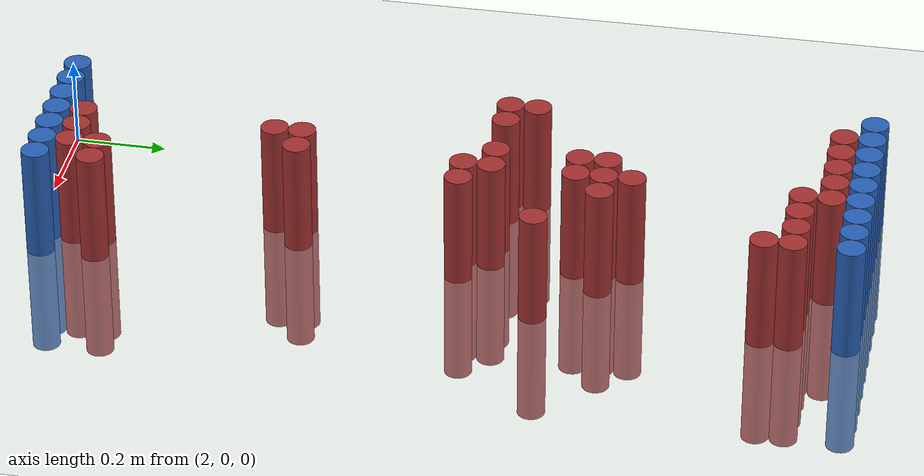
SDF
<sdf version="1.6">
 <world name="default">
  <model name="ground_plane">
   <static>1</static>
   <link name="link">
    <collision name="collision">
     <geometry><plane><normal>0 0 1</normal><size>100 100</size></plane></geometry>
     <surface><friction><ode><mu>100</mu><mu2>50</mu2></ode></friction></surface>
    </collision>
    <visual name="visual">
     <cast_shadows>0</cast_shadows>
     <geometry><plane><normal>0 0 1</normal><size>100 100</size></plane></geometry>
     <material>
      <script><uri>file://media/materials/scripts/gazebo.material</uri><name>Gazebo/Grey</name></script>
     </material>
    </visual>
   </link>
  </model>
  <model name="unit_cylinder_94">
   <static>1</static>
   <pose>2.010000 1.770000 0.000000 0.000000 0.000000 0.000000</pose>
   <link name="link">
    <inertial>
     <mass>1</mass>
     <inertia><ixx>0.145833</ixx><ixy>0</ixy><ixz>0</ixz><iyy>0.145833</iyy><iyz>0</iyz><izz>0.125</izz></inertia>
    </inertial>
    <collision name="collision">
     <geometry><cylinder><radius>0.030000</radius><length>0.5</length></cylinder></geometry>
    </collision>
    <visual name="visual">
     <geometry><cylinder><radius>0.030000</radius><length>0.5</length></cylinder></geometry>
     <material>
      <ambient>0.152000 0.379000 0.720000 1</ambient>
      <diffuse>0.152000 0.379000 0.720000 1</diffuse>
     </material>
     <material>
      <script><name>Gazebo/Grey</name><uri>file://media/materials/scripts/gazebo.material</uri></script>
     </material>
    </visual>
   </link>
  </model>
  <model name="unit_cylinder_95">
   <static>1</static>
   <pose>2.070000 1.770000 0.000000 0.000000 0.000000 0.000000</pose>
   <link name="link">
    <inertial>
     <mass>1</mass>
     <inertia><ixx>0.145833</ixx><ixy>0</ixy><ixz>0</ixz><iyy>0.145833</iyy><iyz>0</iyz><izz>0.125</izz></inertia>
    </inertial>
    <collision name="collision">
     <geometry><cylinder><radius>0.030000</radius><length>0.5</length></cylinder></geometry>
    </collision>
    <visual name="visual">
     <geometry><cylinder><radius>0.030000</radius><length>0.5</length></cylinder></geometry>
     <material>
      <ambient>0.152000 0.379000 0.720000 1</ambient>
      <diffuse>0.152000 0.379000 0.720000 1</diffuse>
     </material>
     <material>
      <script><name>Gazebo/Grey</name><uri>file://media/materials/scripts/gazebo.material</uri></script>
     </material>
    </visual>
   </link>
  </model>
  <model name="unit_cylinder_96">
   <static>1</static>
   <pose>2.130000 1.770000 0.000000 0.000000 0.000000 0.000000</pose>
   <link name="link">
    <inertial>
     <mass>1</mass>
     <inertia><ixx>0.145833</ixx><ixy>0</ixy><ixz>0</ixz><iyy>0.145833</iyy><iyz>0</iyz><izz>0.125</izz></inertia>
    </inertial>
    <collision name="collision">
     <geometry><cylinder><radius>0.030000</radius><length>0.5</length></cylinder></geometry>
    </collision>
    <visual name="visual">
     <geometry><cylinder><radius>0.030000</radius><length>0.5</length></cylinder></geometry>
     <material>
      <ambient>0.152000 0.379000 0.720000 1</ambient>
      <diffuse>0.152000 0.379000 0.720000 1</diffuse>
     </material>
     <material>
      <script><name>Gazebo/Grey</name><uri>file://media/materials/scripts/gazebo.material</uri></script>
     </material>
    </visual>
   </link>
  </model>
  <model name="unit_cylinder_97">
   <static>1</static>
   <pose>2.190000 1.770000 0.000000 0.000000 0.000000 0.000000</pose>
   <link name="link">
    <inertial>
     <mass>1</mass>
     <inertia><ixx>0.145833</ixx><ixy>0</ixy><ixz>0</ixz><iyy>0.145833</iyy><iyz>0</iyz><izz>0.125</izz></inertia>
    </inertial>
    <collision name="collision">
     <geometry><cylinder><radius>0.030000</radius><length>0.5</length></cylinder></geometry>
    </collision>
    <visual name="visual">
     <geometry><cylinder><radius>0.030000</radius><length>0.5</length></cylinder></geometry>
     <material>
      <ambient>0.152000 0.379000 0.720000 1</ambient>
      <diffuse>0.152000 0.379000 0.720000 1</diffuse>
     </material>
     <material>
      <script><name>Gazebo/Grey</name><uri>file://media/materials/scripts/gazebo.material</uri></script>
     </material>
    </visual>
   </link>
  </model>
  <model name="unit_cylinder_98">
   <static>1</static>
   <pose>2.250000 1.770000 0.000000 0.000000 0.000000 0.000000</pose>
   <link name="link">
    <inertial>
     <mass>1</mass>
     <inertia><ixx>0.145833</ixx><ixy>0</ixy><ixz>0</ixz><iyy>0.145833</iyy><iyz>0</iyz><izz>0.125</izz></inertia>
    </inertial>
    <collision name="collision">
     <geometry><cylinder><radius>0.030000</radius><length>0.5</length></cylinder></geometry>
    </collision>
    <visual name="visual">
     <geometry><cylinder><radius>0.030000</radius><length>0.5</length></cylinder></geometry>
     <material>
      <ambient>0.152000 0.379000 0.720000 1</ambient>
      <diffuse>0.152000 0.379000 0.720000 1</diffuse>
     </material>
     <material>
      <script><name>Gazebo/Grey</name><uri>file://media/materials/scripts/gazebo.material</uri></script>
     </material>
    </visual>
   </link>
  </model>
  <model name="unit_cylinder_99">
   <static>1</static>
   <pose>2.310000 1.770000 0.000000 0.000000 0.000000 0.000000</pose>
   <link name="link">
    <inertial>
     <mass>1</mass>
     <inertia><ixx>0.145833</ixx><ixy>0</ixy><ixz>0</ixz><iyy>0.145833</iyy><iyz>0</iyz><izz>0.125</izz></inertia>
    </inertial>
    <collision name="collision">
     <geometry><cylinder><radius>0.030000</radius><length>0.5</length></cylinder></geometry>
    </collision>
    <visual name="visual">
     <geometry><cylinder><radius>0.030000</radius><length>0.5</length></cylinder></geometry>
     <material>
      <ambient>0.152000 0.379000 0.720000 1</ambient>
      <diffuse>0.152000 0.379000 0.720000 1</diffuse>
     </material>
     <material>
      <script><name>Gazebo/Grey</name><uri>file://media/materials/scripts/gazebo.material</uri></script>
     </material>
    </visual>
   </link>
  </model>
  <model name="unit_cylinder_100">
   <static>1</static>
   <pose>2.370000 1.770000 0.000000 0.000000 0.000000 0.000000</pose>
   <link name="link">
    <inertial>
     <mass>1</mass>
     <inertia><ixx>0.145833</ixx><ixy>0</ixy><ixz>0</ixz><iyy>0.145833</iyy><iyz>0</iyz><izz>0.125</izz></inertia>
    </inertial>
    <collision name="collision">
     <geometry><cylinder><radius>0.030000</radius><length>0.5</length></cylinder></geometry>
    </collision>
    <visual name="visual">
     <geometry><cylinder><radius>0.030000</radius><length>0.5</length></cylinder></geometry>
     <material>
      <ambient>0.152000 0.379000 0.720000 1</ambient>
      <diffuse>0.152000 0.379000 0.720000 1</diffuse>
     </material>
     <material>
      <script><name>Gazebo/Grey</name><uri>file://media/materials/scripts/gazebo.material</uri></script>
     </material>
    </visual>
   </link>
  </model>
  <model name="unit_cylinder_101">
   <static>1</static>
   <pose>2.430000 1.770000 0.000000 0.000000 0.000000 0.000000</pose>
   <link name="link">
    <inertial>
     <mass>1</mass>
     <inertia><ixx>0.145833</ixx><ixy>0</ixy><ixz>0</ixz><iyy>0.145833</iyy><iyz>0</iyz><izz>0.125</izz></inertia>
    </inertial>
    <collision name="collision">
     <geometry><cylinder><radius>0.030000</radius><length>0.5</length></cylinder></geometry>
    </collision>
    <visual name="visual">
     <geometry><cylinder><radius>0.030000</radius><length>0.5</length></cylinder></geometry>
     <material>
      <ambient>0.152000 0.379000 0.720000 1</ambient>
      <diffuse>0.152000 0.379000 0.720000 1</diffuse>
     </material>
     <material>
      <script><name>Gazebo/Grey</name><uri>file://media/materials/scripts/gazebo.material</uri></script>
     </material>
    </visual>
   </link>
  </model>
  <model name="unit_cylinder_102">
   <static>1</static>
   <pose>2.490000 1.770000 0.000000 0.000000 0.000000 0.000000</pose>
   <link name="link">
    <inertial>
     <mass>1</mass>
     <inertia><ixx>0.145833</ixx><ixy>0</ixy><ixz>0</ixz><iyy>0.145833</iyy><iyz>0</iyz><izz>0.125</izz></inertia>
    </inertial>
    <collision name="collision">
     <geometry><cylinder><radius>0.030000</radius><length>0.5</length></cylinder></geometry>
    </collision>
    <visual name="visual">
     <geometry><cylinder><radius>0.030000</radius><length>0.5</length></cylinder></geometry>
     <material>
      <ambient>0.152000 0.379000 0.720000 1</ambient>
      <diffuse>0.152000 0.379000 0.720000 1</diffuse>
     </material>
     <material>
      <script><name>Gazebo/Grey</name><uri>file://media/materials/scripts/gazebo.material</uri></script>
     </material>
    </visual>
   </link>
  </model>
  <model name="unit_cylinder_125">
   <static>1</static>
   <pose>2.070000 1.710000 0.000000 0.000000 0.000000 0.000000</pose>
   <link name="link">
    <inertial>
     <mass>1</mass>
     <inertia><ixx>0.145833</ixx><ixy>0</ixy><ixz>0</ixz><iyy>0.145833</iyy><iyz>0</iyz><izz>0.125</izz></inertia>
    </inertial>
    <collision name="collision">
     <geometry><cylinder><radius>0.030000</radius><length>0.5</length></cylinder></geometry>
    </collision>
    <visual name="visual">
     <geometry><cylinder><radius>0.030000</radius><length>0.5</length></cylinder></geometry>
     <material>
      <ambient>0.648000 0.192000 0.192000 1</ambient>
      <diffuse>0.648000 0.192000 0.192000 1</diffuse>
     </material>
     <material>
      <script><name>Gazebo/Grey</name><uri>file://media/materials/scripts/gazebo.material</uri></script>
     </material>
    </visual>
   </link>
  </model>
  <model name="unit_cylinder_126">
   <static>1</static>
   <pose>2.130000 1.710000 0.000000 0.000000 0.000000 0.000000</pose>
   <link name="link">
    <inertial>
     <mass>1</mass>
     <inertia><ixx>0.145833</ixx><ixy>0</ixy><ixz>0</ixz><iyy>0.145833</iyy><iyz>0</iyz><izz>0.125</izz></inertia>
    </inertial>
    <collision name="collision">
     <geometry><cylinder><radius>0.030000</radius><length>0.5</length></cylinder></geometry>
    </collision>
    <visual name="visual">
     <geometry><cylinder><radius>0.030000</radius><length>0.5</length></cylinder></geometry>
     <material>
      <ambient>0.648000 0.192000 0.192000 1</ambient>
      <diffuse>0.648000 0.192000 0.192000 1</diffuse>
     </material>
     <material>
      <script><name>Gazebo/Grey</name><uri>file://media/materials/scripts/gazebo.material</uri></script>
     </material>
    </visual>
   </link>
  </model>
  <model name="unit_cylinder_127">
   <static>1</static>
   <pose>2.190000 1.710000 0.000000 0.000000 0.000000 0.000000</pose>
   <link name="link">
    <inertial>
     <mass>1</mass>
     <inertia><ixx>0.145833</ixx><ixy>0</ixy><ixz>0</ixz><iyy>0.145833</iyy><iyz>0</iyz><izz>0.125</izz></inertia>
    </inertial>
    <collision name="collision">
     <geometry><cylinder><radius>0.030000</radius><length>0.5</length></cylinder></geometry>
    </collision>
    <visual name="visual">
     <geometry><cylinder><radius>0.030000</radius><length>0.5</length></cylinder></geometry>
     <material>
      <ambient>0.648000 0.192000 0.192000 1</ambient>
      <diffuse>0.648000 0.192000 0.192000 1</diffuse>
     </material>
     <material>
      <script><name>Gazebo/Grey</name><uri>file://media/materials/scripts/gazebo.material</uri></script>
     </material>
    </visual>
   </link>
  </model>
  <model name="unit_cylinder_128">
   <static>1</static>
   <pose>2.250000 1.710000 0.000000 0.000000 0.000000 0.000000</pose>
   <link name="link">
    <inertial>
     <mass>1</mass>
     <inertia><ixx>0.145833</ixx><ixy>0</ixy><ixz>0</ixz><iyy>0.145833</iyy><iyz>0</iyz><izz>0.125</izz></inertia>
    </inertial>
    <collision name="collision">
     <geometry><cylinder><radius>0.030000</radius><length>0.5</length></cylinder></geometry>
    </collision>
    <visual name="visual">
     <geometry><cylinder><radius>0.030000</radius><length>0.5</length></cylinder></geometry>
     <material>
      <ambient>0.648000 0.192000 0.192000 1</ambient>
      <diffuse>0.648000 0.192000 0.192000 1</diffuse>
     </material>
     <material>
      <script><name>Gazebo/Grey</name><uri>file://media/materials/scripts/gazebo.material</uri></script>
     </material>
    </visual>
   </link>
  </model>
  <model name="unit_cylinder_129">
   <static>1</static>
   <pose>2.310000 1.710000 0.000000 0.000000 0.000000 0.000000</pose>
   <link name="link">
    <inertial>
     <mass>1</mass>
     <inertia><ixx>0.145833</ixx><ixy>0</ixy><ixz>0</ixz><iyy>0.145833</iyy><iyz>0</iyz><izz>0.125</izz></inertia>
    </inertial>
    <collision name="collision">
     <geometry><cylinder><radius>0.030000</radius><length>0.5</length></cylinder></geometry>
    </collision>
    <visual name="visual">
     <geometry><cylinder><radius>0.030000</radius><length>0.5</length></cylinder></geometry>
     <material>
      <ambient>0.648000 0.192000 0.192000 1</ambient>
      <diffuse>0.648000 0.192000 0.192000 1</diffuse>
     </material>
     <material>
      <script><name>Gazebo/Grey</name><uri>file://media/materials/scripts/gazebo.material</uri></script>
     </material>
    </visual>
   </link>
  </model>
  <model name="unit_cylinder_147">
   <static>1</static>
   <pose>2.310000 1.650000 0.000000 0.000000 0.000000 0.000000</pose>
   <link name="link">
    <inertial>
     <mass>1</mass>
     <inertia><ixx>0.145833</ixx><ixy>0</ixy><ixz>0</ixz><iyy>0.145833</iyy><iyz>0</iyz><izz>0.125</izz></inertia>
    </inertial>
    <collision name="collision">
     <geometry><cylinder><radius>0.030000</radius><length>0.5</length></cylinder></geometry>
    </collision>
    <visual name="visual">
     <geometry><cylinder><radius>0.030000</radius><length>0.5</length></cylinder></geometry>
     <material>
      <ambient>0.648000 0.192000 0.192000 1</ambient>
      <diffuse>0.648000 0.192000 0.192000 1</diffuse>
     </material>
     <material>
      <script><name>Gazebo/Grey</name><uri>file://media/materials/scripts/gazebo.material</uri></script>
     </material>
    </visual>
   </link>
  </model>
  <model name="unit_cylinder_148">
   <static>1</static>
   <pose>2.370000 1.650000 0.000000 0.000000 0.000000 0.000000</pose>
   <link name="link">
    <inertial>
     <mass>1</mass>
     <inertia><ixx>0.145833</ixx><ixy>0</ixy><ixz>0</ixz><iyy>0.145833</iyy><iyz>0</iyz><izz>0.125</izz></inertia>
    </inertial>
    <collision name="collision">
     <geometry><cylinder><radius>0.030000</radius><length>0.5</length></cylinder></geometry>
    </collision>
    <visual name="visual">
     <geometry><cylinder><radius>0.030000</radius><length>0.5</length></cylinder></geometry>
     <material>
      <ambient>0.648000 0.192000 0.192000 1</ambient>
      <diffuse>0.648000 0.192000 0.192000 1</diffuse>
     </material>
     <material>
      <script><name>Gazebo/Grey</name><uri>file://media/materials/scripts/gazebo.material</uri></script>
     </material>
    </visual>
   </link>
  </model>
  <model name="unit_cylinder_149">
   <static>1</static>
   <pose>2.430000 1.650000 0.000000 0.000000 0.000000 0.000000</pose>
   <link name="link">
    <inertial>
     <mass>1</mass>
     <inertia><ixx>0.145833</ixx><ixy>0</ixy><ixz>0</ixz><iyy>0.145833</iyy><iyz>0</iyz><izz>0.125</izz></inertia>
    </inertial>
    <collision name="collision">
     <geometry><cylinder><radius>0.030000</radius><length>0.5</length></cylinder></geometry>
    </collision>
    <visual name="visual">
     <geometry><cylinder><radius>0.030000</radius><length>0.5</length></cylinder></geometry>
     <material>
      <ambient>0.648000 0.192000 0.192000 1</ambient>
      <diffuse>0.648000 0.192000 0.192000 1</diffuse>
     </material>
     <material>
      <script><name>Gazebo/Grey</name><uri>file://media/materials/scripts/gazebo.material</uri></script>
     </material>
    </visual>
   </link>
  </model>
  <model name="unit_cylinder_150">
   <static>1</static>
   <pose>2.490000 1.650000 0.000000 0.000000 0.000000 0.000000</pose>
   <link name="link">
    <inertial>
     <mass>1</mass>
     <inertia><ixx>0.145833</ixx><ixy>0</ixy><ixz>0</ixz><iyy>0.145833</iyy><iyz>0</iyz><izz>0.125</izz></inertia>
    </inertial>
    <collision name="collision">
     <geometry><cylinder><radius>0.030000</radius><length>0.5</length></cylinder></geometry>
    </collision>
    <visual name="visual">
     <geometry><cylinder><radius>0.030000</radius><length>0.5</length></cylinder></geometry>
     <material>
      <ambient>0.648000 0.192000 0.192000 1</ambient>
      <diffuse>0.648000 0.192000 0.192000 1</diffuse>
     </material>
     <material>
      <script><name>Gazebo/Grey</name><uri>file://media/materials/scripts/gazebo.material</uri></script>
     </material>
    </visual>
   </link>
  </model>
  <model name="unit_cylinder_158">
   <static>1</static>
   <pose>2.490000 1.590000 0.000000 0.000000 0.000000 0.000000</pose>
   <link name="link">
    <inertial>
     <mass>1</mass>
     <inertia><ixx>0.145833</ixx><ixy>0</ixy><ixz>0</ixz><iyy>0.145833</iyy><iyz>0</iyz><izz>0.125</izz></inertia>
    </inertial>
    <collision name="collision">
     <geometry><cylinder><radius>0.030000</radius><length>0.5</length></cylinder></geometry>
    </collision>
    <visual name="visual">
     <geometry><cylinder><radius>0.030000</radius><length>0.5</length></cylinder></geometry>
     <material>
      <ambient>0.648000 0.192000 0.192000 1</ambient>
      <diffuse>0.648000 0.192000 0.192000 1</diffuse>
     </material>
     <material>
      <script><name>Gazebo/Grey</name><uri>file://media/materials/scripts/gazebo.material</uri></script>
     </material>
    </visual>
   </link>
  </model>
  <model name="unit_cylinder_171">
   <static>1</static>
   <pose>2.310000 1.290000 0.000000 0.000000 0.000000 0.000000</pose>
   <link name="link">
    <inertial>
     <mass>1</mass>
     <inertia><ixx>0.145833</ixx><ixy>0</ixy><ixz>0</ixz><iyy>0.145833</iyy><iyz>0</iyz><izz>0.125</izz></inertia>
    </inertial>
    <collision name="collision">
     <geometry><cylinder><radius>0.030000</radius><length>0.5</length></cylinder></geometry>
    </collision>
    <visual name="visual">
     <geometry><cylinder><radius>0.030000</radius><length>0.5</length></cylinder></geometry>
     <material>
      <ambient>0.648000 0.192000 0.192000 1</ambient>
      <diffuse>0.648000 0.192000 0.192000 1</diffuse>
     </material>
     <material>
      <script><name>Gazebo/Grey</name><uri>file://media/materials/scripts/gazebo.material</uri></script>
     </material>
    </visual>
   </link>
  </model>
  <model name="unit_cylinder_177">
   <static>1</static>
   <pose>2.250000 1.230000 0.000000 0.000000 0.000000 0.000000</pose>
   <link name="link">
    <inertial>
     <mass>1</mass>
     <inertia><ixx>0.145833</ixx><ixy>0</ixy><ixz>0</ixz><iyy>0.145833</iyy><iyz>0</iyz><izz>0.125</izz></inertia>
    </inertial>
    <collision name="collision">
     <geometry><cylinder><radius>0.030000</radius><length>0.5</length></cylinder></geometry>
    </collision>
    <visual name="visual">
     <geometry><cylinder><radius>0.030000</radius><length>0.5</length></cylinder></geometry>
     <material>
      <ambient>0.648000 0.192000 0.192000 1</ambient>
      <diffuse>0.648000 0.192000 0.192000 1</diffuse>
     </material>
     <material>
      <script><name>Gazebo/Grey</name><uri>file://media/materials/scripts/gazebo.material</uri></script>
     </material>
    </visual>
   </link>
  </model>
  <model name="unit_cylinder_178">
   <static>1</static>
   <pose>2.310000 1.230000 0.000000 0.000000 0.000000 0.000000</pose>
   <link name="link">
    <inertial>
     <mass>1</mass>
     <inertia><ixx>0.145833</ixx><ixy>0</ixy><ixz>0</ixz><iyy>0.145833</iyy><iyz>0</iyz><izz>0.125</izz></inertia>
    </inertial>
    <collision name="collision">
     <geometry><cylinder><radius>0.030000</radius><length>0.5</length></cylinder></geometry>
    </collision>
    <visual name="visual">
     <geometry><cylinder><radius>0.030000</radius><length>0.5</length></cylinder></geometry>
     <material>
      <ambient>0.648000 0.192000 0.192000 1</ambient>
      <diffuse>0.648000 0.192000 0.192000 1</diffuse>
     </material>
     <material>
      <script><name>Gazebo/Grey</name><uri>file://media/materials/scripts/gazebo.material</uri></script>
     </material>
    </visual>
   </link>
  </model>
  <model name="unit_cylinder_179">
   <static>1</static>
   <pose>2.370000 1.230000 0.000000 0.000000 0.000000 0.000000</pose>
   <link name="link">
    <inertial>
     <mass>1</mass>
     <inertia><ixx>0.145833</ixx><ixy>0</ixy><ixz>0</ixz><iyy>0.145833</iyy><iyz>0</iyz><izz>0.125</izz></inertia>
    </inertial>
    <collision name="collision">
     <geometry><cylinder><radius>0.030000</radius><length>0.5</length></cylinder></geometry>
    </collision>
    <visual name="visual">
     <geometry><cylinder><radius>0.030000</radius><length>0.5</length></cylinder></geometry>
     <material>
      <ambient>0.648000 0.192000 0.192000 1</ambient>
      <diffuse>0.648000 0.192000 0.192000 1</diffuse>
     </material>
     <material>
      <script><name>Gazebo/Grey</name><uri>file://media/materials/scripts/gazebo.material</uri></script>
     </material>
    </visual>
   </link>
  </model>
  <model name="unit_cylinder_184">
   <static>1</static>
   <pose>2.250000 1.170000 0.000000 0.000000 0.000000 0.000000</pose>
   <link name="link">
    <inertial>
     <mass>1</mass>
     <inertia><ixx>0.145833</ixx><ixy>0</ixy><ixz>0</ixz><iyy>0.145833</iyy><iyz>0</iyz><izz>0.125</izz></inertia>
    </inertial>
    <collision name="collision">
     <geometry><cylinder><radius>0.030000</radius><length>0.5</length></cylinder></geometry>
    </collision>
    <visual name="visual">
     <geometry><cylinder><radius>0.030000</radius><length>0.5</length></cylinder></geometry>
     <material>
      <ambient>0.648000 0.192000 0.192000 1</ambient>
      <diffuse>0.648000 0.192000 0.192000 1</diffuse>
     </material>
     <material>
      <script><name>Gazebo/Grey</name><uri>file://media/materials/scripts/gazebo.material</uri></script>
     </material>
    </visual>
   </link>
  </model>
  <model name="unit_cylinder_185">
   <static>1</static>
   <pose>2.310000 1.170000 0.000000 0.000000 0.000000 0.000000</pose>
   <link name="link">
    <inertial>
     <mass>1</mass>
     <inertia><ixx>0.145833</ixx><ixy>0</ixy><ixz>0</ixz><iyy>0.145833</iyy><iyz>0</iyz><izz>0.125</izz></inertia>
    </inertial>
    <collision name="collision">
     <geometry><cylinder><radius>0.030000</radius><length>0.5</length></cylinder></geometry>
    </collision>
    <visual name="visual">
     <geometry><cylinder><radius>0.030000</radius><length>0.5</length></cylinder></geometry>
     <material>
      <ambient>0.648000 0.192000 0.192000 1</ambient>
      <diffuse>0.648000 0.192000 0.192000 1</diffuse>
     </material>
     <material>
      <script><name>Gazebo/Grey</name><uri>file://media/materials/scripts/gazebo.material</uri></script>
     </material>
    </visual>
   </link>
  </model>
  <model name="unit_cylinder_190">
   <static>1</static>
   <pose>2.490000 1.110000 0.000000 0.000000 0.000000 0.000000</pose>
   <link name="link">
    <inertial>
     <mass>1</mass>
     <inertia><ixx>0.145833</ixx><ixy>0</ixy><ixz>0</ixz><iyy>0.145833</iyy><iyz>0</iyz><izz>0.125</izz></inertia>
    </inertial>
    <collision name="collision">
     <geometry><cylinder><radius>0.030000</radius><length>0.5</length></cylinder></geometry>
    </collision>
    <visual name="visual">
     <geometry><cylinder><radius>0.030000</radius><length>0.5</length></cylinder></geometry>
     <material>
      <ambient>0.648000 0.192000 0.192000 1</ambient>
      <diffuse>0.648000 0.192000 0.192000 1</diffuse>
     </material>
     <material>
      <script><name>Gazebo/Grey</name><uri>file://media/materials/scripts/gazebo.material</uri></script>
     </material>
    </visual>
   </link>
  </model>
  <model name="unit_cylinder_194">
   <static>1</static>
   <pose>2.070000 1.050000 0.000000 0.000000 0.000000 0.000000</pose>
   <link name="link">
    <inertial>
     <mass>1</mass>
     <inertia><ixx>0.145833</ixx><ixy>0</ixy><ixz>0</ixz><iyy>0.145833</iyy><iyz>0</iyz><izz>0.125</izz></inertia>
    </inertial>
    <collision name="collision">
     <geometry><cylinder><radius>0.030000</radius><length>0.5</length></cylinder></geometry>
    </collision>
    <visual name="visual">
     <geometry><cylinder><radius>0.030000</radius><length>0.5</length></cylinder></geometry>
     <material>
      <ambient>0.648000 0.192000 0.192000 1</ambient>
      <diffuse>0.648000 0.192000 0.192000 1</diffuse>
     </material>
     <material>
      <script><name>Gazebo/Grey</name><uri>file://media/materials/scripts/gazebo.material</uri></script>
     </material>
    </visual>
   </link>
  </model>
  <model name="unit_cylinder_198">
   <static>1</static>
   <pose>2.070000 0.990000 0.000000 0.000000 0.000000 0.000000</pose>
   <link name="link">
    <inertial>
     <mass>1</mass>
     <inertia><ixx>0.145833</ixx><ixy>0</ixy><ixz>0</ixz><iyy>0.145833</iyy><iyz>0</iyz><izz>0.125</izz></inertia>
    </inertial>
    <collision name="collision">
     <geometry><cylinder><radius>0.030000</radius><length>0.5</length></cylinder></geometry>
    </collision>
    <visual name="visual">
     <geometry><cylinder><radius>0.030000</radius><length>0.5</length></cylinder></geometry>
     <material>
      <ambient>0.648000 0.192000 0.192000 1</ambient>
      <diffuse>0.648000 0.192000 0.192000 1</diffuse>
     </material>
     <material>
      <script><name>Gazebo/Grey</name><uri>file://media/materials/scripts/gazebo.material</uri></script>
     </material>
    </visual>
   </link>
  </model>
  <model name="unit_cylinder_199">
   <static>1</static>
   <pose>2.130000 0.990000 0.000000 0.000000 0.000000 0.000000</pose>
   <link name="link">
    <inertial>
     <mass>1</mass>
     <inertia><ixx>0.145833</ixx><ixy>0</ixy><ixz>0</ixz><iyy>0.145833</iyy><iyz>0</iyz><izz>0.125</izz></inertia>
    </inertial>
    <collision name="collision">
     <geometry><cylinder><radius>0.030000</radius><length>0.5</length></cylinder></geometry>
    </collision>
    <visual name="visual">
     <geometry><cylinder><radius>0.030000</radius><length>0.5</length></cylinder></geometry>
     <material>
      <ambient>0.648000 0.192000 0.192000 1</ambient>
      <diffuse>0.648000 0.192000 0.192000 1</diffuse>
     </material>
     <material>
      <script><name>Gazebo/Grey</name><uri>file://media/materials/scripts/gazebo.material</uri></script>
     </material>
    </visual>
   </link>
  </model>
  <model name="unit_cylinder_200">
   <static>1</static>
   <pose>2.250000 0.990000 0.000000 0.000000 0.000000 0.000000</pose>
   <link name="link">
    <inertial>
     <mass>1</mass>
     <inertia><ixx>0.145833</ixx><ixy>0</ixy><ixz>0</ixz><iyy>0.145833</iyy><iyz>0</iyz><izz>0.125</izz></inertia>
    </inertial>
    <collision name="collision">
     <geometry><cylinder><radius>0.030000</radius><length>0.5</length></cylinder></geometry>
    </collision>
    <visual name="visual">
     <geometry><cylinder><radius>0.030000</radius><length>0.5</length></cylinder></geometry>
     <material>
      <ambient>0.648000 0.192000 0.192000 1</ambient>
      <diffuse>0.648000 0.192000 0.192000 1</diffuse>
     </material>
     <material>
      <script><name>Gazebo/Grey</name><uri>file://media/materials/scripts/gazebo.material</uri></script>
     </material>
    </visual>
   </link>
  </model>
  <model name="unit_cylinder_201">
   <static>1</static>
   <pose>2.310000 0.990000 0.000000 0.000000 0.000000 0.000000</pose>
   <link name="link">
    <inertial>
     <mass>1</mass>
     <inertia><ixx>0.145833</ixx><ixy>0</ixy><ixz>0</ixz><iyy>0.145833</iyy><iyz>0</iyz><izz>0.125</izz></inertia>
    </inertial>
    <collision name="collision">
     <geometry><cylinder><radius>0.030000</radius><length>0.5</length></cylinder></geometry>
    </collision>
    <visual name="visual">
     <geometry><cylinder><radius>0.030000</radius><length>0.5</length></cylinder></geometry>
     <material>
      <ambient>0.648000 0.192000 0.192000 1</ambient>
      <diffuse>0.648000 0.192000 0.192000 1</diffuse>
     </material>
     <material>
      <script><name>Gazebo/Grey</name><uri>file://media/materials/scripts/gazebo.material</uri></script>
     </material>
    </visual>
   </link>
  </model>
  <model name="unit_cylinder_204">
   <static>1</static>
   <pose>2.310000 0.930000 0.000000 0.000000 0.000000 0.000000</pose>
   <link name="link">
    <inertial>
     <mass>1</mass>
     <inertia><ixx>0.145833</ixx><ixy>0</ixy><ixz>0</ixz><iyy>0.145833</iyy><iyz>0</iyz><izz>0.125</izz></inertia>
    </inertial>
    <collision name="collision">
     <geometry><cylinder><radius>0.030000</radius><length>0.5</length></cylinder></geometry>
    </collision>
    <visual name="visual">
     <geometry><cylinder><radius>0.030000</radius><length>0.5</length></cylinder></geometry>
     <material>
      <ambient>0.648000 0.192000 0.192000 1</ambient>
      <diffuse>0.648000 0.192000 0.192000 1</diffuse>
     </material>
     <material>
      <script><name>Gazebo/Grey</name><uri>file://media/materials/scripts/gazebo.material</uri></script>
     </material>
    </visual>
   </link>
  </model>
  <model name="unit_cylinder_205">
   <static>1</static>
   <pose>2.370000 0.930000 0.000000 0.000000 0.000000 0.000000</pose>
   <link name="link">
    <inertial>
     <mass>1</mass>
     <inertia><ixx>0.145833</ixx><ixy>0</ixy><ixz>0</ixz><iyy>0.145833</iyy><iyz>0</iyz><izz>0.125</izz></inertia>
    </inertial>
    <collision name="collision">
     <geometry><cylinder><radius>0.030000</radius><length>0.5</length></cylinder></geometry>
    </collision>
    <visual name="visual">
     <geometry><cylinder><radius>0.030000</radius><length>0.5</length></cylinder></geometry>
     <material>
      <ambient>0.648000 0.192000 0.192000 1</ambient>
      <diffuse>0.648000 0.192000 0.192000 1</diffuse>
     </material>
     <material>
      <script><name>Gazebo/Grey</name><uri>file://media/materials/scripts/gazebo.material</uri></script>
     </material>
    </visual>
   </link>
  </model>
  <model name="unit_cylinder_217">
   <static>1</static>
   <pose>2.250000 0.570000 0.000000 0.000000 0.000000 0.000000</pose>
   <link name="link">
    <inertial>
     <mass>1</mass>
     <inertia><ixx>0.145833</ixx><ixy>0</ixy><ixz>0</ixz><iyy>0.145833</iyy><iyz>0</iyz><izz>0.125</izz></inertia>
    </inertial>
    <collision name="collision">
     <geometry><cylinder><radius>0.030000</radius><length>0.5</length></cylinder></geometry>
    </collision>
    <visual name="visual">
     <geometry><cylinder><radius>0.030000</radius><length>0.5</length></cylinder></geometry>
     <material>
      <ambient>0.648000 0.192000 0.192000 1</ambient>
      <diffuse>0.648000 0.192000 0.192000 1</diffuse>
     </material>
     <material>
      <script><name>Gazebo/Grey</name><uri>file://media/materials/scripts/gazebo.material</uri></script>
     </material>
    </visual>
   </link>
  </model>
  <model name="unit_cylinder_218">
   <static>1</static>
   <pose>2.310000 0.570000 0.000000 0.000000 0.000000 0.000000</pose>
   <link name="link">
    <inertial>
     <mass>1</mass>
     <inertia><ixx>0.145833</ixx><ixy>0</ixy><ixz>0</ixz><iyy>0.145833</iyy><iyz>0</iyz><izz>0.125</izz></inertia>
    </inertial>
    <collision name="collision">
     <geometry><cylinder><radius>0.030000</radius><length>0.5</length></cylinder></geometry>
    </collision>
    <visual name="visual">
     <geometry><cylinder><radius>0.030000</radius><length>0.5</length></cylinder></geometry>
     <material>
      <ambient>0.648000 0.192000 0.192000 1</ambient>
      <diffuse>0.648000 0.192000 0.192000 1</diffuse>
     </material>
     <material>
      <script><name>Gazebo/Grey</name><uri>file://media/materials/scripts/gazebo.material</uri></script>
     </material>
    </visual>
   </link>
  </model>
  <model name="unit_cylinder_219">
   <static>1</static>
   <pose>2.250000 0.510000 0.000000 0.000000 0.000000 0.000000</pose>
   <link name="link">
    <inertial>
     <mass>1</mass>
     <inertia><ixx>0.145833</ixx><ixy>0</ixy><ixz>0</ixz><iyy>0.145833</iyy><iyz>0</iyz><izz>0.125</izz></inertia>
    </inertial>
    <collision name="collision">
     <geometry><cylinder><radius>0.030000</radius><length>0.5</length></cylinder></geometry>
    </collision>
    <visual name="visual">
     <geometry><cylinder><radius>0.030000</radius><length>0.5</length></cylinder></geometry>
     <material>
      <ambient>0.648000 0.192000 0.192000 1</ambient>
      <diffuse>0.648000 0.192000 0.192000 1</diffuse>
     </material>
     <material>
      <script><name>Gazebo/Grey</name><uri>file://media/materials/scripts/gazebo.material</uri></script>
     </material>
    </visual>
   </link>
  </model>
  <model name="unit_cylinder_233">
   <static>1</static>
   <pose>2.370000 0.150000 0.000000 0.000000 0.000000 0.000000</pose>
   <link name="link">
    <inertial>
     <mass>1</mass>
     <inertia><ixx>0.145833</ixx><ixy>0</ixy><ixz>0</ixz><iyy>0.145833</iyy><iyz>0</iyz><izz>0.125</izz></inertia>
    </inertial>
    <collision name="collision">
     <geometry><cylinder><radius>0.030000</radius><length>0.5</length></cylinder></geometry>
    </collision>
    <visual name="visual">
     <geometry><cylinder><radius>0.030000</radius><length>0.5</length></cylinder></geometry>
     <material>
      <ambient>0.648000 0.192000 0.192000 1</ambient>
      <diffuse>0.648000 0.192000 0.192000 1</diffuse>
     </material>
     <material>
      <script><name>Gazebo/Grey</name><uri>file://media/materials/scripts/gazebo.material</uri></script>
     </material>
    </visual>
   </link>
  </model>
  <model name="unit_cylinder_234">
   <static>1</static>
   <pose>2.430000 0.150000 0.000000 0.000000 0.000000 0.000000</pose>
   <link name="link">
    <inertial>
     <mass>1</mass>
     <inertia><ixx>0.145833</ixx><ixy>0</ixy><ixz>0</ixz><iyy>0.145833</iyy><iyz>0</iyz><izz>0.125</izz></inertia>
    </inertial>
    <collision name="collision">
     <geometry><cylinder><radius>0.030000</radius><length>0.5</length></cylinder></geometry>
    </collision>
    <visual name="visual">
     <geometry><cylinder><radius>0.030000</radius><length>0.5</length></cylinder></geometry>
     <material>
      <ambient>0.648000 0.192000 0.192000 1</ambient>
      <diffuse>0.648000 0.192000 0.192000 1</diffuse>
     </material>
     <material>
      <script><name>Gazebo/Grey</name><uri>file://media/materials/scripts/gazebo.material</uri></script>
     </material>
    </visual>
   </link>
  </model>
  <model name="unit_cylinder_242">
   <static>1</static>
   <pose>2.250000 0.090000 0.000000 0.000000 0.000000 0.000000</pose>
   <link name="link">
    <inertial>
     <mass>1</mass>
     <inertia><ixx>0.145833</ixx><ixy>0</ixy><ixz>0</ixz><iyy>0.145833</iyy><iyz>0</iyz><izz>0.125</izz></inertia>
    </inertial>
    <collision name="collision">
     <geometry><cylinder><radius>0.030000</radius><length>0.5</length></cylinder></geometry>
    </collision>
    <visual name="visual">
     <geometry><cylinder><radius>0.030000</radius><length>0.5</length></cylinder></geometry>
     <material>
      <ambient>0.648000 0.192000 0.192000 1</ambient>
      <diffuse>0.648000 0.192000 0.192000 1</diffuse>
     </material>
     <material>
      <script><name>Gazebo/Grey</name><uri>file://media/materials/scripts/gazebo.material</uri></script>
     </material>
    </visual>
   </link>
  </model>
  <model name="unit_cylinder_243">
   <static>1</static>
   <pose>2.310000 0.090000 0.000000 0.000000 0.000000 0.000000</pose>
   <link name="link">
    <inertial>
     <mass>1</mass>
     <inertia><ixx>0.145833</ixx><ixy>0</ixy><ixz>0</ixz><iyy>0.145833</iyy><iyz>0</iyz><izz>0.125</izz></inertia>
    </inertial>
    <collision name="collision">
     <geometry><cylinder><radius>0.030000</radius><length>0.5</length></cylinder></geometry>
    </collision>
    <visual name="visual">
     <geometry><cylinder><radius>0.030000</radius><length>0.5</length></cylinder></geometry>
     <material>
      <ambient>0.648000 0.192000 0.192000 1</ambient>
      <diffuse>0.648000 0.192000 0.192000 1</diffuse>
     </material>
     <material>
      <script><name>Gazebo/Grey</name><uri>file://media/materials/scripts/gazebo.material</uri></script>
     </material>
    </visual>
   </link>
  </model>
  <model name="unit_cylinder_244">
   <static>1</static>
   <pose>2.370000 0.090000 0.000000 0.000000 0.000000 0.000000</pose>
   <link name="link">
    <inertial>
     <mass>1</mass>
     <inertia><ixx>0.145833</ixx><ixy>0</ixy><ixz>0</ixz><iyy>0.145833</iyy><iyz>0</iyz><izz>0.125</izz></inertia>
    </inertial>
    <collision name="collision">
     <geometry><cylinder><radius>0.030000</radius><length>0.5</length></cylinder></geometry>
    </collision>
    <visual name="visual">
     <geometry><cylinder><radius>0.030000</radius><length>0.5</length></cylinder></geometry>
     <material>
      <ambient>0.648000 0.192000 0.192000 1</ambient>
      <diffuse>0.648000 0.192000 0.192000 1</diffuse>
     </material>
     <material>
      <script><name>Gazebo/Grey</name><uri>file://media/materials/scripts/gazebo.material</uri></script>
     </material>
    </visual>
   </link>
  </model>
  <model name="unit_cylinder_254">
   <static>1</static>
   <pose>2.070000 0.030000 0.000000 0.000000 0.000000 0.000000</pose>
   <link name="link">
    <inertial>
     <mass>1</mass>
     <inertia><ixx>0.145833</ixx><ixy>0</ixy><ixz>0</ixz><iyy>0.145833</iyy><iyz>0</iyz><izz>0.125</izz></inertia>
    </inertial>
    <collision name="collision">
     <geometry><cylinder><radius>0.030000</radius><length>0.5</length></cylinder></geometry>
    </collision>
    <visual name="visual">
     <geometry><cylinder><radius>0.030000</radius><length>0.5</length></cylinder></geometry>
     <material>
      <ambient>0.152000 0.379000 0.720000 1</ambient>
      <diffuse>0.152000 0.379000 0.720000 1</diffuse>
     </material>
     <material>
      <script><name>Gazebo/Grey</name><uri>file://media/materials/scripts/gazebo.material</uri></script>
     </material>
    </visual>
   </link>
  </model>
  <model name="unit_cylinder_255">
   <static>1</static>
   <pose>2.130000 0.030000 0.000000 0.000000 0.000000 0.000000</pose>
   <link name="link">
    <inertial>
     <mass>1</mass>
     <inertia><ixx>0.145833</ixx><ixy>0</ixy><ixz>0</ixz><iyy>0.145833</iyy><iyz>0</iyz><izz>0.125</izz></inertia>
    </inertial>
    <collision name="collision">
     <geometry><cylinder><radius>0.030000</radius><length>0.5</length></cylinder></geometry>
    </collision>
    <visual name="visual">
     <geometry><cylinder><radius>0.030000</radius><length>0.5</length></cylinder></geometry>
     <material>
      <ambient>0.152000 0.379000 0.720000 1</ambient>
      <diffuse>0.152000 0.379000 0.720000 1</diffuse>
     </material>
     <material>
      <script><name>Gazebo/Grey</name><uri>file://media/materials/scripts/gazebo.material</uri></script>
     </material>
    </visual>
   </link>
  </model>
  <model name="unit_cylinder_256">
   <static>1</static>
   <pose>2.190000 0.030000 0.000000 0.000000 0.000000 0.000000</pose>
   <link name="link">
    <inertial>
     <mass>1</mass>
     <inertia><ixx>0.145833</ixx><ixy>0</ixy><ixz>0</ixz><iyy>0.145833</iyy><iyz>0</iyz><izz>0.125</izz></inertia>
    </inertial>
    <collision name="collision">
     <geometry><cylinder><radius>0.030000</radius><length>0.5</length></cylinder></geometry>
    </collision>
    <visual name="visual">
     <geometry><cylinder><radius>0.030000</radius><length>0.5</length></cylinder></geometry>
     <material>
      <ambient>0.152000 0.379000 0.720000 1</ambient>
      <diffuse>0.152000 0.379000 0.720000 1</diffuse>
     </material>
     <material>
      <script><name>Gazebo/Grey</name><uri>file://media/materials/scripts/gazebo.material</uri></script>
     </material>
    </visual>
   </link>
  </model>
  <model name="unit_cylinder_257">
   <static>1</static>
   <pose>2.250000 0.030000 0.000000 0.000000 0.000000 0.000000</pose>
   <link name="link">
    <inertial>
     <mass>1</mass>
     <inertia><ixx>0.145833</ixx><ixy>0</ixy><ixz>0</ixz><iyy>0.145833</iyy><iyz>0</iyz><izz>0.125</izz></inertia>
    </inertial>
    <collision name="collision">
     <geometry><cylinder><radius>0.030000</radius><length>0.5</length></cylinder></geometry>
    </collision>
    <visual name="visual">
     <geometry><cylinder><radius>0.030000</radius><length>0.5</length></cylinder></geometry>
     <material>
      <ambient>0.152000 0.379000 0.720000 1</ambient>
      <diffuse>0.152000 0.379000 0.720000 1</diffuse>
     </material>
     <material>
      <script><name>Gazebo/Grey</name><uri>file://media/materials/scripts/gazebo.material</uri></script>
     </material>
    </visual>
   </link>
  </model>
  <model name="unit_cylinder_258">
   <static>1</static>
   <pose>2.310000 0.030000 0.000000 0.000000 0.000000 0.000000</pose>
   <link name="link">
    <inertial>
     <mass>1</mass>
     <inertia><ixx>0.145833</ixx><ixy>0</ixy><ixz>0</ixz><iyy>0.145833</iyy><iyz>0</iyz><izz>0.125</izz></inertia>
    </inertial>
    <collision name="collision">
     <geometry><cylinder><radius>0.030000</radius><length>0.5</length></cylinder></geometry>
    </collision>
    <visual name="visual">
     <geometry><cylinder><radius>0.030000</radius><length>0.5</length></cylinder></geometry>
     <material>
      <ambient>0.152000 0.379000 0.720000 1</ambient>
      <diffuse>0.152000 0.379000 0.720000 1</diffuse>
     </material>
     <material>
      <script><name>Gazebo/Grey</name><uri>file://media/materials/scripts/gazebo.material</uri></script>
     </material>
    </visual>
   </link>
  </model>
  <model name="unit_cylinder_259">
   <static>1</static>
   <pose>2.370000 0.030000 0.000000 0.000000 0.000000 0.000000</pose>
   <link name="link">
    <inertial>
     <mass>1</mass>
     <inertia><ixx>0.145833</ixx><ixy>0</ixy><ixz>0</ixz><iyy>0.145833</iyy><iyz>0</iyz><izz>0.125</izz></inertia>
    </inertial>
    <collision name="collision">
     <geometry><cylinder><radius>0.030000</radius><length>0.5</length></cylinder></geometry>
    </collision>
    <visual name="visual">
     <geometry><cylinder><radius>0.030000</radius><length>0.5</length></cylinder></geometry>
     <material>
      <ambient>0.152000 0.379000 0.720000 1</ambient>
      <diffuse>0.152000 0.379000 0.720000 1</diffuse>
     </material>
     <material>
      <script><name>Gazebo/Grey</name><uri>file://media/materials/scripts/gazebo.material</uri></script>
     </material>
    </visual>
   </link>
  </model>
  <model name="unit_cylinder_260">
   <static>1</static>
   <pose>2.430000 0.030000 0.000000 0.000000 0.000000 0.000000</pose>
   <link name="link">
    <inertial>
     <mass>1</mass>
     <inertia><ixx>0.145833</ixx><ixy>0</ixy><ixz>0</ixz><iyy>0.145833</iyy><iyz>0</iyz><izz>0.125</izz></inertia>
    </inertial>
    <collision name="collision">
     <geometry><cylinder><radius>0.030000</radius><length>0.5</length></cylinder></geometry>
    </collision>
    <visual name="visual">
     <geometry><cylinder><radius>0.030000</radius><length>0.5</length></cylinder></geometry>
     <material>
      <ambient>0.152000 0.379000 0.720000 1</ambient>
      <diffuse>0.152000 0.379000 0.720000 1</diffuse>
     </material>
     <material>
      <script><name>Gazebo/Grey</name><uri>file://media/materials/scripts/gazebo.material</uri></script>
     </material>
    </visual>
   </link>
  </model>
 </world>
</sdf>
